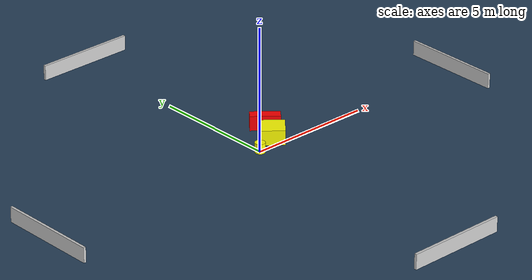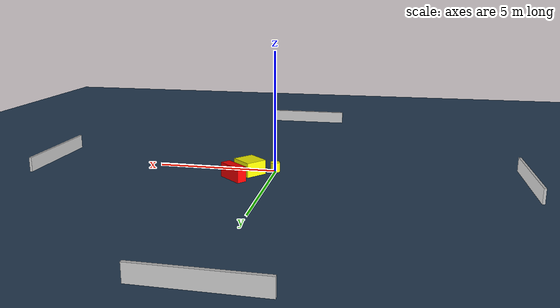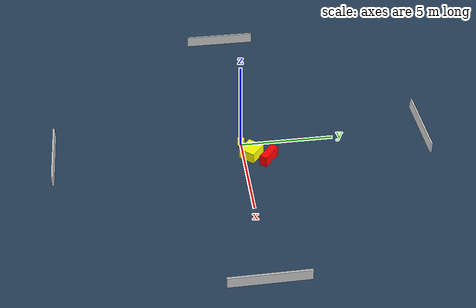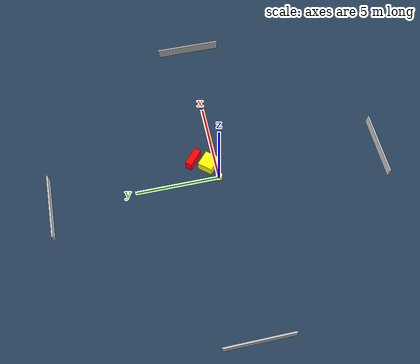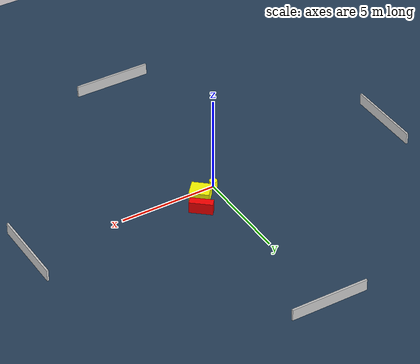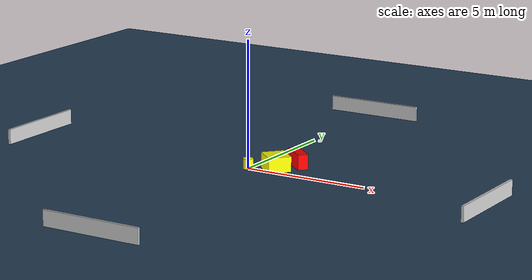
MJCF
<?xml version="1.0" ?>
<mujoco model="generated_environment">
  <option timestep="0.01" integrator="RK4" cone="elliptic"/>
  <default>
    <geom density="1"/>
  </default>
  <asset>
    <texture builtin="gradient" height="3072" name="skybox" rgb1="0.3 0.5 0.7" rgb2="0 0 0" type="skybox" width="512"/>
    <texture builtin="checker" height="300" name="groundplane" rgb1="0.2 0.3 0.4" rgb2="0.1 0.2 0.3" type="2d" width="300"/>
    <material name="groundplane" reflectance="0.2" texrepeat="5 5" texture="groundplane"/>
  </asset>
  <worldbody>
    <light dir="0 0 -1" directional="true" pos="0 0 1.5"/>
    <geom condim="3" friction="0.5 0.005 0.001" material="groundplane" name="floor" pos="0 0 0" size="0 0 0.05" type="plane"/>
    <body name="walls">
      <geom name="wall_1" condim="4" pos="-10.0 0.0 0.3" rgba="0.800000011920929 0.800000011920929 0.800000011920929 1.0" size="0.05 2.0 0.3" type="box"/>
      <geom name="wall_2" condim="4" pos="10.0 0.0 0.3" rgba="0.800000011920929 0.800000011920929 0.800000011920929 1.0" size="0.05 2.0 0.3" type="box"/>
      <geom name="wall_3" condim="4" pos="0.0 -10.0 0.3" rgba="0.800000011920929 0.800000011920929 0.800000011920929 1.0" size="2.0 0.05 0.3" type="box"/>
      <geom name="wall_4" condim="4" pos="0.0 10.0 0.3" rgba="0.800000011920929 0.800000011920929 0.800000011920929 1.0" size="2.0 0.05 0.3" type="box"/>
    </body>
    <body name="robot">
      <joint name="joint_x" type="slide" pos="0 0 0" axis="1 0 0"/>
      <joint name="joint_y" type="slide" pos="0 0 0" axis="0 1 0"/>
      <geom name="robot" type="cylinder" pos="0.0 0.0 0.2" size="0.2 0.2 0.0" mass="5.0" friction="1.0 0.005 0.0001" condim="4" rgba="1.0 1.0 0.0 1.0"/>
    </body>
    <body name="obstacle_1_movable">
      <geom name="obstacle_1_movable" condim="4" pos="0.9847433749301354 0.42645645202805554 0.3" euler="0 0 318.85067437770095" friction="0.0 0.005 0.001" rgba="1.0 1.0 0.0 1.0" size="0.4941792551724778 0.45071154986579803 0.3" type="box" mass="0.1"/>
      <joint type="free"/>
    </body>
    <body name="obstacle_2_static">
      <geom name="obstacle_2_static" condim="4" pos="1.4451725362387178 1.2954211437975411 0.3" euler="0 0 139.57943887355682" friction="0.0 0.005 0.001" rgba="1.0 0.0 0.0 1.0" size="0.5818660630624362 0.20633929417781208 0.3" type="box"/>
    </body>
  </worldbody>
  <actuator>
    <motor name="actuator_x" joint="joint_x" gear="1" ctrlrange="-1 1"/>
    <motor name="actuator_y" joint="joint_y" gear="1" ctrlrange="-1 1"/>
  </actuator>
</mujoco>
